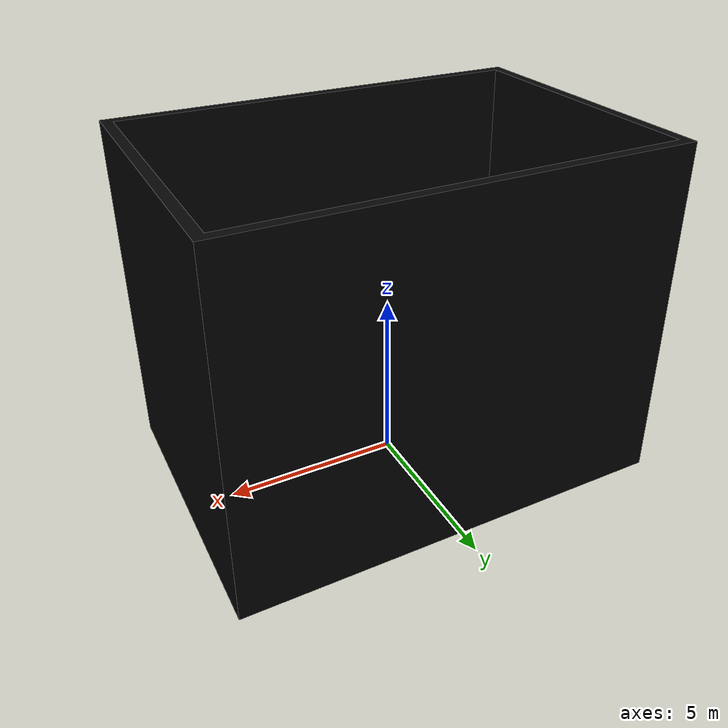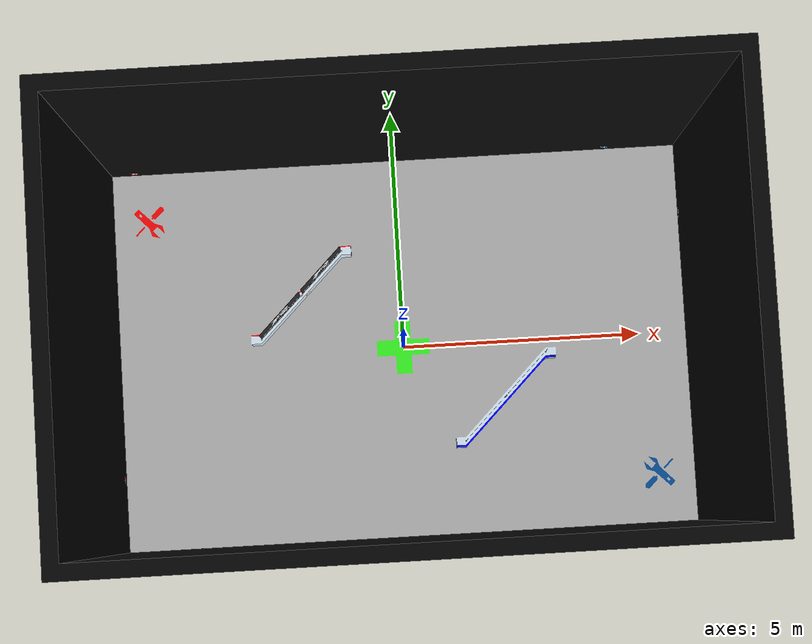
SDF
<?xml version='1.0'?>
<sdf version='1.6'>
  <model name='rmul_2025'>
    <static>true</static>
    <link name='body'>
      <pose frame=''>0 0 0 0 0 0</pose>
      <self_collide>0</self_collide>
      <kinematic>0</kinematic>
      <gravity>1</gravity>
      <visual name='visual'>
        <geometry>
          <mesh>
            <uri>model://rmul_2025/meshes/rmul_2025.dae</uri>
            <scale>1 1 1</scale>
          </mesh>
        </geometry>
      </visual>
      <collision name='collision'>
        <geometry>
          <mesh>
            <uri>model://rmul_2025/meshes/rmul_2025.dae</uri>
            <scale>1 1 1</scale>
          </mesh>
        </geometry>
      </collision>
    </link>
  </model>
</sdf>
